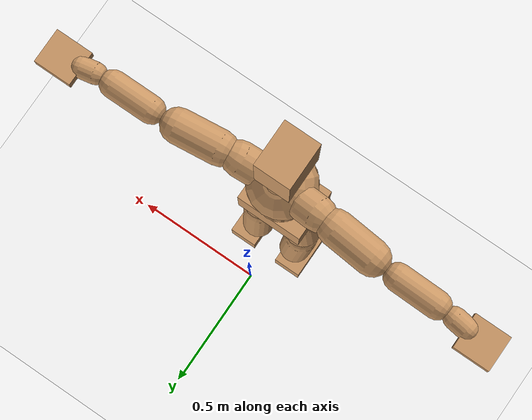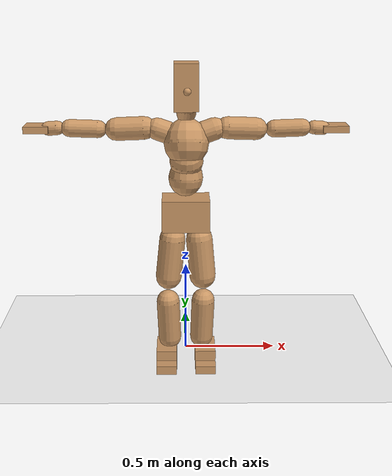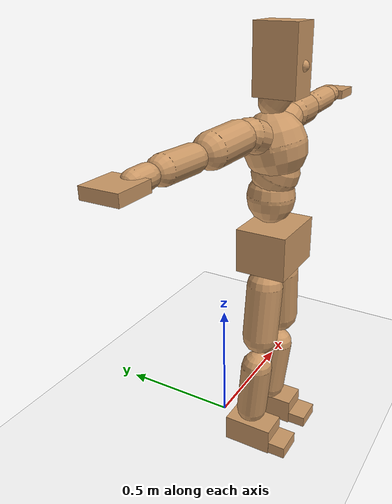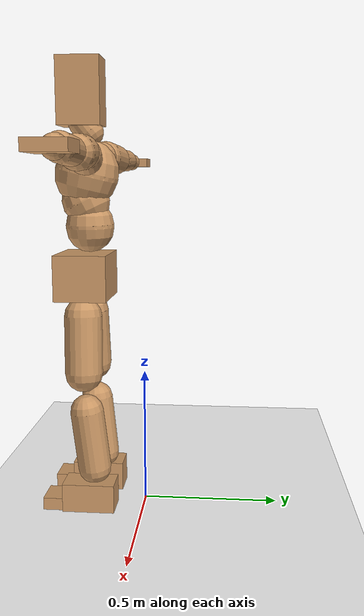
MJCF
<mujoco model="humanoid">
  <option integrator="implicitfast" />

  <visual>
    <global offwidth="1280" offheight="960" />
    <headlight active="1" ambient="0.34 0.34 0.34" diffuse="0.5 0.5 0.5" />
  </visual>

  <default>
    <joint damping="2" stiffness="2" armature="0.01" limited="true" solimplimit="0 .99 .01" />
    <geom condim="1" friction="0.7 0.005 0.0001" solimp=".99 .99 .003" solref="0.015 1" margin="0.001" rgba="0.8 0.6 .4 1" />
    <default class="smplcontact">
      <geom condim="3" friction="1. 0.005 0.0001" solref="0.015 1" solimp="0.98 0.98 0.001" priority="1" />
    </default>
    <default class="stiff_medium">
      <joint stiffness="10" />
    </default>
    <default class="stiff_medium_higher">
      <joint stiffness="50" />
    </default>
    <default class="stiff_high">
      <joint stiffness="100" />
    </default>
  </default>

  <asset>
    <texture type="skybox" builtin="gradient" rgb1="0.99 0.99 0.99" rgb2="0.608 0.828 0.892" width="100" />
    <texture builtin="flat" height="1278" mark="cross" markrgb="1 1 1" name="texgeom" random="0.01" rgb1="0.8 0.6 0.4" rgb2="0.8 0.6 0.4" type="cube" width="127" />
    <texture name="texplane" type="2d" builtin="checker" markrgb="1 1 1" rgb1="0.756 0.772 0.76" rgb2="0.6 0.6 0.6" width="100" height="100" />
    <material name="MatPlane" reflectance="0.5" texture="texplane" texrepeat="1 1" texuniform="true" />
    <material name="geom" texture="texgeom" texuniform="true" />
  </asset>

  <worldbody>
    <light name="tracking_light" pos="0 0 7" dir="0 0 -1" directional="true" cutoff="100" exponent="1" diffuse="1 1 1" specular="0.1 0.1 0.1" mode="trackcom" />
    <camera name="back" pos="0 3 2.4" xyaxes="-1 0 0 0 -1 2" mode="trackcom" />
    <camera name="side" pos="-3 0 2.4" xyaxes="0 -1 0 1 0 2" mode="trackcom" />
    <camera name="front_side" pos="-2.8 -2.8 0.8" xyaxes="0.5 -0.5 0 0.1 0.1 1" mode="trackcom" />
    <geom condim="3" name="floor" pos="0 0 0" rgba="1 1 1 1" size="100 100 .2" type="plane" material="MatPlane" />
    <body name="Pelvis" pos="-0.0018 -0.2233 0.876008" euler="90 0 0">
      <site name="Pelvis" size="0.01" />
      <freejoint name="Pelvis" />
      <geom type="box" pos="-0.0000 -0.0121 -0.0055" size="0.122935 0.08303 0.09545" quat="1.0000 0.0000 0.0000 0.0000" density="3165.830099" name="Pelvis" />
      <body name="L_Hip" pos="0.0642875 -0.084545 -0.00629">
        <joint name="L_Hip_x" type="hinge" pos="0 0 0" axis="1 0 0" stiffness="11.615594318181817" range="-160.0 22.92" class="stiff_medium" damping="16.992005719801227" armature="0.011047533761662804"/>
        <joint name="L_Hip_y" type="hinge" pos="0 0 0" axis="0 1 0" stiffness="11.657666136363636" range="-70.0 70.0" class="stiff_medium" damping="12.769709742510313" armature="0.013987832984795676"/>
        <joint name="L_Hip_z" type="hinge" pos="0 0 0" axis="0 0 1" stiffness="11.648951363636364" range="-28.65 90.0" class="stiff_medium" damping="11.341956910592778" armature="0.011043052936362053"/>
        <geom type="capsule" density="2040.816327" fromto="0.0063825 -0.069375 -0.0008325 0.025345 -0.277685 -0.00333" size="0.0691875" name="L_Hip" />
        <body name="L_Knee" pos="0.0317275 -0.34706 -0.0041625">
          <joint name="L_Knee_x" type="hinge" pos="0 0 0" axis="1 0 0" range="-5.16 171.89" damping="9.355423091618" armature="0.011488266022836445" stiffness="2.3807972045454546"/>
          <joint name="L_Knee_y" type="hinge" pos="0 0 0" axis="0 1 0" range="-4.58 6.88" damping="10.443131447323267" armature="0.014533092011066952" stiffness="2.3450574545454543"/>
          <joint name="L_Knee_z" type="hinge" pos="0 0 0" axis="0 0 1" range="-6.88 4.58" damping="9.36510623409631" armature="0.011465499468772676" stiffness="2.3904653863636365"/>
          <geom type="capsule" density="1234.567901" fromto="-0.0024975 -0.07363 -0.0080475 -0.0100825 -0.29452 -0.032375" size="0.0608625" name="L_Knee" />
          <body name="L_Ankle" pos="-0.01258 -0.36815 -0.0404225">
            <joint name="L_Ankle_x" type="hinge" pos="0 0 0" axis="1 0 0" range="-45.84 45.84" class="stiff_medium" damping="8.19975593533048" armature="0.01418074966511696" stiffness="13.170436250000002"/>
            <joint name="L_Ankle_y" type="hinge" pos="0 0 0" axis="0 1 0" range="-74.48 22.92" class="stiff_medium" damping="4.120473631475571" armature="0.01432359274807872" stiffness="13.170425454545454"/>
            <joint name="L_Ankle_z" type="hinge" pos="0 0 0" axis="0 0 1" range="-4.58 4.58" class="stiff_medium" damping="8.505685989660677" armature="0.015258677544483321" stiffness="13.17041"/>
            <geom type="box" pos="0.0215525 -0.0221075 0.022385" size="0.0543375 0.0522 0.095625" quat="1.0000 0.0000 0.0000 0.0000" density="449.071558" name="L_Ankle" class="smplcontact" />
            <body name="L_Toe" pos="0.02442 -0.051615 0.110353">
              <joint name="L_Toe_x" type="hinge" pos="0 0 0" axis="1 0 0" range="-91.67 22.92" armature="0.015800903518619687" damping="2.8851646588065916" stiffness="2.6340820000000003"/>
              <joint name="L_Toe_y" type="hinge" pos="0 0 0" axis="0 1 0" range="-4.58 4.58" armature="0.016456563304650357" damping="2.9444163150831786" stiffness="2.6340820000000003"/>
              <joint name="L_Toe_z" type="hinge" pos="0 0 0" axis="0 0 1" range="-4.58 4.58" armature="0.01778227210127668" damping="3.060717656402664" stiffness="2.6340820000000003"/>
              <geom type="box" pos="-0.002775 0.0050875 0.02294" size="0.053775 0.0225 0.0558" quat="1.0000 0.0000 0.0000 0.0000" density="423.206892" name="L_Toe" class="smplcontact" />
            </body>
          </body>
        </body>
      </body>
      <body name="R_Hip" pos="-0.0626225 -0.0837125 -0.0039775">
        <joint name="R_Hip_x" type="hinge" pos="0 0 0" axis="1 0 0" stiffness="11.615594318181817" range="-160.0 22.92" class="stiff_medium" damping="16.992005719801227" armature="0.011047533761662804"/>
        <joint name="R_Hip_y" type="hinge" pos="0 0 0" axis="0 1 0" stiffness="11.657666136363636" range="-70.0 70.0" class="stiff_medium" damping="12.769709742510313" armature="0.013987832984795676"/>
        <joint name="R_Hip_z" type="hinge" pos="0 0 0" axis="0 0 1" stiffness="11.648951363636364" range="-90.0 28.65" class="stiff_medium" damping="11.341956910592778" armature="0.011043052936362053"/>
        <geom type="capsule" density="2040.816327" fromto="-0.0071225 -0.0707625 -0.001665 -0.028305 -0.283143 -0.0065675" size="0.068175" name="R_Hip" />
        <body name="R_Knee" pos="-0.0354275 -0.353905 -0.0082325">
          <joint name="R_Knee_x" type="hinge" pos="0 0 0" axis="1 0 0" range="-5.16 171.89" damping="9.355423091618" armature="0.011488266022836445" stiffness="2.3807972045454546"/>
          <joint name="R_Knee_y" type="hinge" pos="0 0 0" axis="0 1 0" range="-6.88 4.58" damping="10.443131447323267" armature="0.014533092011066952" stiffness="2.3450574545454543"/>
          <joint name="R_Knee_z" type="hinge" pos="0 0 0" axis="0 0 1" range="-4.58 6.88" damping="9.36510623409631" armature="0.011465499468772676" stiffness="2.3904653863636365"/>
          <geom type="capsule" density="1234.567901" fromto="0.00296 -0.0737225 -0.0078625 0.011655 -0.294797 -0.031265" size="0.0608625" name="R_Knee" />
          <body name="R_Ankle" pos="0.014615 -0.36852 -0.0391275">
            <joint name="R_Ankle_x" type="hinge" pos="0 0 0" axis="1 0 0" range="-45.84 45.84" class="stiff_medium" damping="8.19975593533048" armature="0.01418074966511696" stiffness="13.170436250000002"/>
            <joint name="R_Ankle_y" type="hinge" pos="0 0 0" axis="0 1 0" range="-22.92 74.48" class="stiff_medium" damping="4.120473631475571" armature="0.01432359274807872" stiffness="13.170425454545454"/>
            <joint name="R_Ankle_z" type="hinge" pos="0 0 0" axis="0 0 1" range="-4.58 4.58" class="stiff_medium" damping="8.505685989660677" armature="0.015258677544483321" stiffness="13.17041"/>
            <geom type="box" pos="-0.01961 -0.016095 0.02368" size="0.0543375 0.053775 0.0973125" quat="1.0000 0.0000 0.0000 0.0000" density="434.700981" name="R_Ankle" class="smplcontact" />
            <body name="R_Toe" pos="-0.023495 -0.0444925 0.114053">
              <joint name="R_Toe_x" type="hinge" pos="0 0 0" axis="1 0 0" range="-91.67 22.92" armature="0.015800903518619687" damping="2.8851646588065916" stiffness="2.6340820000000003"/>
              <joint name="R_Toe_y" type="hinge" pos="0 0 0" axis="0 1 0" range="-4.58 4.58" armature="0.016456563304650357" damping="2.9444163150831786" stiffness="2.6340820000000003"/>
              <joint name="R_Toe_z" type="hinge" pos="0 0 0" axis="0 0 1" range="-4.58 4.58" armature="0.01778227210127668" damping="3.060717656402664" stiffness="2.6340820000000003"/>
              <geom type="box" pos="0.003885 0.0041625 0.0209975" size="0.0538875 0.0243 0.0554625" quat="1.0000 0.0000 0.0000 0.0000" density="407.384095" name="R_Toe" class="smplcontact" />
            </body>
          </body>
        </body>
      </body>
      <body name="Torso" pos="-0.0024 0.10464 -0.025632">
        <joint name="Torso_x" type="hinge" pos="0 0 0" axis="1 0 0" range="-25.78 57.3" class="stiff_medium" damping="18.196011550101037" armature="0.011746362893571758" stiffness="12.527559545454546"/>
        <joint name="Torso_y" type="hinge" pos="0 0 0" axis="0 1 0" range="-57.3 57.3" class="stiff_high" damping="24.203706786049068" armature="0.011708942407888783" stiffness="125.07949090909092"/>
        <joint name="Torso_z" type="hinge" pos="0 0 0" axis="0 0 1" range="-34.38 34.38" class="stiff_high" damping="24.368800513527663" armature="0.011631632329502093" stiffness="127.63437272727272"/>
        <geom type="capsule" density="2040.816327" fromto="0.0024 0.058368 0.00048 0.00288 0.071328 0.000576" size="0.088435" name="Torso" />
        <body name="Spine" pos="0.00528 0.129792 0.001056">
          <joint name="Spine_x" type="hinge" pos="0 0 0" axis="1 0 0" stiffness="12.273275681818184" range="-25.78 57.3" class="stiff_medium" damping="17.77674392424834" armature="0.011443567226544498"/>
          <joint name="Spine_y" type="hinge" pos="0 0 0" axis="0 1 0" stiffness="12.333935" range="-57.3 57.3" class="stiff_high" damping="9.592960346568319" armature="0.011657989751804694"/>
          <joint name="Spine_z" type="hinge" pos="0 0 0" axis="0 0 1" stiffness="24.41806954545455" range="-34.38 34.38" class="stiff_high" damping="14.16652226910456" armature="0.011415177647407095"/>
          <geom type="capsule" density="2040.816327" fromto="0.000672 0.022848 0.010944 0.000768 0.027936 0.01344" size="0.086825" name="Spine" />
          <body name="Chest" pos="0.00144 0.050784 0.024384">
            <joint name="Chest_x" type="hinge" pos="0 0 0" axis="1 0 0" stiffness="11.88884977272727" range="-25.78 57.3" class="stiff_medium" damping="17.396770080525854" armature="0.011313966541768337"/>
            <joint name="Chest_y" type="hinge" pos="0 0 0" axis="0 1 0" stiffness="12.029503488372093" range="-57.3 57.3" class="stiff_high" damping="9.456580155332752" armature="0.011615570355921518"/>
            <joint name="Chest_z" type="hinge" pos="0 0 0" axis="0 0 1" stiffness="23.908487727272725" range="-34.38 34.38" class="stiff_high" damping="13.98257330475694" armature="0.011357679427324019"/>
            <geom type="capsule" density="2040.816327" fromto="-0.000864 0.065472 -0.016608 -0.00096 0.079968 -0.020352" size="0.11523" name="Chest" />
            <body name="Neck" pos="-0.002688 0.205344 -0.041184">
              <joint name="Neck_x" type="hinge" pos="0 0 0" axis="1 0 0" range="-28.65 57.3" class="stiff_medium_higher" damping="10.952943423838132" armature="0.01093794967384778" stiffness="54.83978863636364"/>
              <joint name="Neck_y" type="hinge" pos="0 0 0" axis="0 1 0" range="-40.11 40.11" class="stiff_medium_higher" damping="11.153769836607205" armature="0.011378182364996433" stiffness="54.66891704545455"/>
              <joint name="Neck_z" type="hinge" pos="0 0 0" axis="0 0 1" range="-40.11 40.11" class="stiff_medium_higher" damping="10.893159204138636" armature="0.010926765174696642" stiffness="54.29828295454545"/>
              <geom type="capsule" density="1000" fromto="0.00096 0.01248 0.009888 0.003936 0.04992 0.039456" size="0.05014" name="Neck" />
              <body name="Head" pos="0.0052 0.065 0.0513">
                <joint name="Head_x" type="hinge" pos="0 0 0" axis="1 0 0" range="-28.65 57.3" class="stiff_medium_higher" damping="2.1781256830256708" armature="0.011013722584402794" stiffness="53.84455000000001"/>
                <joint name="Head_y" type="hinge" pos="0 0 0" axis="0 1 0" range="-40.11 40.11" class="stiff_medium_higher" damping="2.2051729405462255" armature="0.011288950547727869" stiffness="53.84455000000001"/>
                <joint name="Head_z" type="hinge" pos="0 0 0" axis="0 0 1" range="-40.11 40.11" class="stiff_medium_higher" damping="2.1767777263016717" armature="0.011000094878968891" stiffness="53.84455000000001"/>
                <geom type="box" pos="-0.0042 0.0876 -0.0116" size="0.062115 0.118285 0.0779" quat="1.0000 0.0000 0.0000 0.0000" density="1018.069894" name="Head" />
                <geom type="capsule" name="nose" size="0.0205 0.01025" pos="0 0.07 0.05" quat="1 0 0 0" mass="0" contype="0" conaffinity="0" />
              </body>
            </body>
            <body name="L_Thorax" pos="0.074072 0.114398 -0.032054">
              <joint name="L_Thorax_x" type="hinge" pos="0 0 0" axis="1 0 0" range="-10.89 4.58" class="stiff_medium_higher" damping="25.542373824688298" armature="0.013543930085154133" stiffness="60.212661363636364"/>
              <joint name="L_Thorax_y" type="hinge" pos="0 0 0" axis="0 1 0" range="-28.65 17.19" class="stiff_medium_higher" damping="23.444888604465987" armature="0.011464480904814637" stiffness="59.93106079545455"/>
              <joint name="L_Thorax_z" type="hinge" pos="0 0 0" axis="0 0 1" range="-31.51 40.11" class="stiff_medium_higher" damping="23.44397655073607" armature="0.011462598717954029" stiffness="59.93623806818182"/>
              <geom type="capsule" density="1000" fromto="0.017108 0.005734 -0.001692 0.068432 0.022936 -0.006674" size="0.0586125" name="L_Thorax" />
              <body name="L_Shoulder" pos="0.08554 0.02867 -0.008366">
                <joint name="L_Shoulder_x" type="hinge" pos="0 0 0" axis="1 0 0" range="-97.4 97.4" class="stiff_medium" damping="7.891273550453283" armature="0.014336507078470222" stiffness="12.065583863636364"/>
                <joint name="L_Shoulder_y" type="hinge" pos="0 0 0" axis="0 1 0" range="-108.86 80.21" class="stiff_medium" damping="7.06543847784517" armature="0.011529437922979816" stiffness="12.027285000000001"/>
                <joint name="L_Shoulder_z" type="hinge" pos="0 0 0" axis="0 0 1" range="-97.4 85.94" class="stiff_medium" damping="7.0595849483947095" armature="0.011526910885383178" stiffness="12.009997045454547"/>
                <geom type="capsule" density="1000" fromto="0.048786 -0.002444 -0.00517 0.195238 -0.009588 -0.02068" size="0.0581625" name="L_Shoulder" />
                <body name="L_Elbow" pos="0.244024 -0.012032 -0.02585">
                  <joint name="L_Elbow_x" type="hinge" pos="0 0 0" axis="1 0 0" range="-17.19 4.58" damping="6.92048440236336" armature="0.015648413900493766" stiffness="2.448457954545455"/>
                  <joint name="L_Elbow_y" type="hinge" pos="0 0 0" axis="0 1 0" range="-180.0 17.19" damping="6.0215971860437145" armature="0.011847942921695805" stiffness="2.4483327045454546"/>
                  <joint name="L_Elbow_z" type="hinge" pos="0 0 0" axis="0 0 1" range="-100.84 4.58" damping="6.0190563525125125" armature="0.011834677084840109" stiffness="2.449009068181818"/>
                  <geom type="capsule" density="1000" fromto="0.046812 0.001692 -0.000188 0.187436 0.006768 -0.000846" size="0.0455625" name="L_Elbow" />
                  <body name="L_Wrist" pos="0.234248 0.00846 -0.001128">
                    <joint name="L_Wrist_x" type="hinge" pos="0 0 0" axis="1 0 0" range="-180.0 22.92" armature="0.016133652063845882" damping="2.895767269694115" stiffness="2.59875075"/>
                    <joint name="L_Wrist_y" type="hinge" pos="0 0 0" axis="0 1 0" range="-17.19 17.19" armature="0.01301350899986824" damping="2.5937444750884713" stiffness="2.584817977272727"/>
                    <joint name="L_Wrist_z" type="hinge" pos="0 0 0" axis="0 0 1" range="-22.92 22.92" armature="0.012836938175715745" damping="2.578602482348474" stiffness="2.5898663181818184"/>
                    <geom type="capsule" density="1000" fromto="0.015792 -0.001504 -0.00282 0.063168 -0.00611 -0.01128" size="0.035775" name="L_Wrist" class="smplcontact" />
                    <body name="L_Hand" pos="0.07896 -0.007708 -0.014006">
                      <joint name="L_Hand_x" type="hinge" pos="0 0 0" axis="1 0 0" range="-17.19 17.19" armature="0.01778335183119599" damping="3.0855276711881254" stiffness="2.6767959999999995"/>
                      <joint name="L_Hand_y" type="hinge" pos="0 0 0" axis="0 1 0" range="-51.57 51.57" armature="0.015154464713021946" damping="2.8483472585328595" stiffness="2.6767959999999995"/>
                      <joint name="L_Hand_z" type="hinge" pos="0 0 0" axis="0 0 1" range="-91.67 91.67" armature="0.01445369893297368" damping="2.7817118286762996" stiffness="2.6767959999999995"/>
                      <geom type="box" pos="0.046342 0.00094 -0.005452" size="0.0658125 0.017775 0.060525" quat="1.0000 0.0000 0.0000 0.0000" density="400.552564" name="L_Hand" class="smplcontact" />
                    </body>
                  </body>
                </body>
              </body>
            </body>
            <body name="R_Thorax" pos="-0.076892 0.111672 -0.036284">
              <joint name="R_Thorax_x" type="hinge" pos="0 0 0" axis="1 0 0" range="-10.89 4.58" class="stiff_medium_higher" damping="25.542373824688298" armature="0.013543930085154133" stiffness="60.212661363636364"/>
              <joint name="R_Thorax_y" type="hinge" pos="0 0 0" axis="0 1 0" range="-17.19 28.65" class="stiff_medium_higher" damping="23.444888604465987" armature="0.011464480904814637" stiffness="59.93106079545455"/>
              <joint name="R_Thorax_z" type="hinge" pos="0 0 0" axis="0 0 1" range="-40.11 31.51" class="stiff_medium_higher" damping="23.44397655073607" armature="0.011462598717954029" stiffness="59.93623806818182"/>
              <geom type="capsule" density="1000" fromto="-0.018048 0.00611 -0.001692 -0.072192 0.02444 -0.006862" size="0.0574875" name="R_Thorax" />
              <body name="R_Shoulder" pos="-0.09024 0.030644 -0.008554">
                <joint name="R_Shoulder_x" type="hinge" pos="0 0 0" axis="1 0 0" range="-97.4 97.4" class="stiff_medium" damping="7.891273550453283" armature="0.014336507078470222" stiffness="12.065583863636364"/>
                <joint name="R_Shoulder_y" type="hinge" pos="0 0 0" axis="0 1 0" range="-80.21 108.86" class="stiff_medium" damping="7.06543847784517" armature="0.011529437922979816" stiffness="12.027285000000001"/>
                <joint name="R_Shoulder_z" type="hinge" pos="0 0 0" axis="0 0 1" range="-85.94 97.4" class="stiff_medium" damping="7.0595849483947095" armature="0.011526910885383178" stiffness="12.009997045454547"/>
                <geom type="capsule" density="1000" fromto="-0.047658 -0.002538 -0.004042 -0.19082 -0.010058 -0.016074" size="0.0597375" name="R_Shoulder" />
                <body name="R_Elbow" pos="-0.238478 -0.012502 -0.020116">
                  <joint name="R_Elbow_x" type="hinge" pos="0 0 0" axis="1 0 0" range="-17.19 4.58" damping="6.92048440236336" armature="0.015648413900493766" stiffness="2.448457954545455"/>
                  <joint name="R_Elbow_y" type="hinge" pos="0 0 0" axis="0 1 0" range="-17.19 180.0" damping="6.0215971860437145" armature="0.011847942921695805" stiffness="2.4483327045454546"/>
                  <joint name="R_Elbow_z" type="hinge" pos="0 0 0" axis="0 0 1" range="-4.58 100.84" damping="6.0190563525125125" armature="0.011834677084840109" stiffness="2.449009068181818"/>
                  <geom type="capsule" density="1000" fromto="-0.048034 0.001504 -0.001034 -0.191948 0.005828 -0.004136" size="0.0459" name="R_Elbow" />
                  <body name="R_Wrist" pos="-0.239982 0.007332 -0.005264">
                    <joint name="R_Wrist_x" type="hinge" pos="0 0 0" axis="1 0 0" range="-180.0 22.92" armature="0.016133652063845882" damping="2.895767269694115" stiffness="2.59875075"/>
                    <joint name="R_Wrist_y" type="hinge" pos="0 0 0" axis="0 1 0" range="-17.19 17.19" armature="0.01301350899986824" damping="2.5937444750884713" stiffness="2.584817977272727"/>
                    <joint name="R_Wrist_z" type="hinge" pos="0 0 0" axis="0 0 1" range="-22.92 22.92" armature="0.012836938175715745" damping="2.578602482348474" stiffness="2.5898663181818184"/>
                    <geom type="capsule" density="1000" fromto="-0.015886 -0.001128 -0.001974 -0.063638 -0.004606 -0.007802" size="0.036675" name="R_Wrist" class="smplcontact" />
                    <body name="R_Hand" pos="-0.079524 -0.005734 -0.009682">
                      <joint name="R_Hand_x" type="hinge" pos="0 0 0" axis="1 0 0" range="-17.19 17.19" armature="0.01778335183119599" damping="3.0855276711881254" stiffness="2.6767959999999995"/>
                      <joint name="R_Hand_y" type="hinge" pos="0 0 0" axis="0 1 0" range="-51.57 51.57" armature="0.015154464713021946" damping="2.8483472585328595" stiffness="2.6767959999999995"/>
                      <joint name="R_Hand_z" type="hinge" pos="0 0 0" axis="0 0 1" range="-91.67 91.67" armature="0.01445369893297368" damping="2.7817118286762996" stiffness="2.6767959999999995"/>
                      <geom type="box" pos="-0.043428 -0.000846 -0.007426" size="0.0640125 0.01845 0.061425" quat="1.0000 0.0000 0.0000 0.0000" density="403.679611" name="R_Hand" class="smplcontact" />
                    </body>
                  </body>
                </body>
              </body>
            </body>
          </body>
        </body>
      </body>
    </body>
  </worldbody>
  <actuator>
    <general name="L_Hip_x" joint="L_Hip_x" biastype="affine" gainprm="333.7509459971676" biasprm="-250.11250643610177 -209.0806977272727 -2.2656007626401635" ctrllimited="true" ctrlrange="-1 1" forcerange="-418.1613954545454 418.1613954545454" />
    <general name="L_Hip_y" joint="L_Hip_y" biastype="affine" gainprm="256.3654680440175" biasprm="0.0 -209.83799045454543 -2.5539419485020627" ctrllimited="true" ctrlrange="-1 1" forcerange="-419.67598090909087 419.67598090909087" />
    <general name="L_Hip_z" joint="L_Hip_z" biastype="affine" gainprm="217.10731260439215" biasprm="112.25902762983108 -209.68112454545457 -2.2683913821185557" ctrllimited="true" ctrlrange="-1 1" forcerange="-419.36224909090913 419.36224909090913" />
    <general name="L_Knee_x" joint="L_Knee_x" biastype="affine" gainprm="331.0611477688985" biasprm="311.7640506495817 -214.27174840909092 -2.3388557729045" ctrllimited="true" ctrlrange="-1 1" forcerange="-428.54349681818184 428.54349681818184" />
    <general name="L_Knee_y" joint="L_Knee_y" biastype="affine" gainprm="21.107071752692733" biasprm="4.236148781081439 -211.0551709090909 -2.610782861830817" ctrllimited="true" ctrlrange="-1 1" forcerange="-422.1103418181818 422.1103418181818" />
    <general name="L_Knee_z" joint="L_Knee_z" biastype="affine" gainprm="21.515773242359867" biasprm="-4.318174385464895 -215.14188477272728 -2.3412765585240773" ctrllimited="true" ctrlrange="-1 1" forcerange="-430.28376954545456 430.28376954545456" />
    <general name="L_Ankle_x" joint="L_Ankle_x" biastype="affine" gainprm="94.83412609927666" biasprm="0.0 -118.53392625000001 -2.7332519784434934" ctrllimited="true" ctrlrange="-1 1" forcerange="-237.06785250000001 237.06785250000001" />
    <general name="L_Ankle_y" joint="L_Ankle_y" biastype="affine" gainprm="100.75083236120766" biasprm="-53.33380817806845 -118.53382909090908 -2.7469824209837137" ctrllimited="true" ctrlrange="-1 1" forcerange="-237.06765818181816 237.06765818181816" />
    <general name="L_Ankle_z" joint="L_Ankle_z" biastype="affine" gainprm="9.47511849587531" biasprm="0.0 -118.53369 -2.8352286632202253" ctrllimited="true" ctrlrange="-1 1" forcerange="-237.06738 237.06738" />
    <general name="L_Toe_x" joint="L_Toe_x" biastype="affine" gainprm="94.82566187269448" biasprm="-56.892087038552624 -94.826952 -1.1540658635226366" ctrllimited="true" ctrlrange="-1 1" forcerange="-189.653904 189.653904" />
    <general name="L_Toe_y" joint="L_Toe_y" biastype="affine" gainprm="7.580094796700249" biasprm="0.0 -94.826952 -1.1777665260332715" ctrllimited="true" ctrlrange="-1 1" forcerange="-189.653904 189.653904" />
    <general name="L_Toe_z" joint="L_Toe_z" biastype="affine" gainprm="7.580094796700249" biasprm="0.0 -94.826952 -1.2242870625610658" ctrllimited="true" ctrlrange="-1 1" forcerange="-189.653904 189.653904" />
    <general name="R_Hip_x" joint="R_Hip_x" biastype="affine" gainprm="333.7509459971676" biasprm="-250.11250643610177 -209.0806977272727 -2.2656007626401635" ctrllimited="true" ctrlrange="-1 1" forcerange="-418.1613954545454 418.1613954545454" />
    <general name="R_Hip_y" joint="R_Hip_y" biastype="affine" gainprm="256.3654680440175" biasprm="0.0 -209.83799045454543 -2.5539419485020627" ctrllimited="true" ctrlrange="-1 1" forcerange="-419.67598090909087 419.67598090909087" />
    <general name="R_Hip_z" joint="R_Hip_z" biastype="affine" gainprm="217.10731260439215" biasprm="-112.25902762983108 -209.68112454545457 -2.2683913821185557" ctrllimited="true" ctrlrange="-1 1" forcerange="-419.36224909090913 419.36224909090913" />
    <general name="R_Knee_x" joint="R_Knee_x" biastype="affine" gainprm="331.0611477688985" biasprm="311.7640506495817 -214.27174840909092 -2.3388557729045" ctrllimited="true" ctrlrange="-1 1" forcerange="-428.54349681818184 428.54349681818184" />
    <general name="R_Knee_y" joint="R_Knee_y" biastype="affine" gainprm="21.107071752692733" biasprm="-4.236148781081439 -211.0551709090909 -2.610782861830817" ctrllimited="true" ctrlrange="-1 1" forcerange="-422.1103418181818 422.1103418181818" />
    <general name="R_Knee_z" joint="R_Knee_z" biastype="affine" gainprm="21.515773242359867" biasprm="4.318174385464895 -215.14188477272728 -2.3412765585240773" ctrllimited="true" ctrlrange="-1 1" forcerange="-430.28376954545456 430.28376954545456" />
    <general name="R_Ankle_x" joint="R_Ankle_x" biastype="affine" gainprm="94.83412609927666" biasprm="0.0 -118.53392625000001 -2.7332519784434934" ctrllimited="true" ctrlrange="-1 1" forcerange="-237.06785250000001 237.06785250000001" />
    <general name="R_Ankle_y" joint="R_Ankle_y" biastype="affine" gainprm="100.75083236120766" biasprm="53.33380817806845 -118.53382909090908 -2.7469824209837137" ctrllimited="true" ctrlrange="-1 1" forcerange="-237.06765818181816 237.06765818181816" />
    <general name="R_Ankle_z" joint="R_Ankle_z" biastype="affine" gainprm="9.47511849587531" biasprm="0.0 -118.53369 -2.8352286632202253" ctrllimited="true" ctrlrange="-1 1" forcerange="-237.06738 237.06738" />
    <general name="R_Toe_x" joint="R_Toe_x" biastype="affine" gainprm="94.82566187269448" biasprm="-56.892087038552624 -94.826952 -1.1540658635226366" ctrllimited="true" ctrlrange="-1 1" forcerange="-189.653904 189.653904" />
    <general name="R_Toe_y" joint="R_Toe_y" biastype="affine" gainprm="7.580094796700249" biasprm="0.0 -94.826952 -1.1777665260332715" ctrllimited="true" ctrlrange="-1 1" forcerange="-189.653904 189.653904" />
    <general name="R_Toe_z" joint="R_Toe_z" biastype="affine" gainprm="7.580094796700249" biasprm="0.0 -94.826952 -1.2242870625610658" ctrllimited="true" ctrlrange="-1 1" forcerange="-189.653904 189.653904" />
    <general name="Torso_x" joint="Torso_x" biastype="affine" gainprm="217.98247393745027" biasprm="82.70110229307211 -300.6614290909091 -4.85226974669361" ctrllimited="true" ctrlrange="-1 1" forcerange="-450.9921436363636 450.9921436363636" />
    <general name="Torso_y" joint="Torso_y" biastype="affine" gainprm="300.21289065263" biasprm="0.0 -300.1907781818182 -4.840741357209813" ctrllimited="true" ctrlrange="-1 1" forcerange="-450.2861672727273 450.2861672727273" />
    <general name="Torso_z" joint="Torso_z" biastype="affine" gainprm="183.8070352122202" biasprm="0.0 -306.3224945454545 -4.873760102705533" ctrllimited="true" ctrlrange="-1 1" forcerange="-459.4837418181818 459.4837418181818" />
    <general name="Spine_x" joint="Spine_x" biastype="affine" gainprm="213.5578750778951" biasprm="81.02243888366938 -294.5586163636364 -4.740465046466224" ctrllimited="true" ctrlrange="-1 1" forcerange="-441.8379245454546 441.8379245454546" />
    <general name="Spine_y" joint="Spine_y" biastype="affine" gainprm="296.0362448359248" biasprm="0.0 -296.01444000000004 -4.796480173284159" ctrllimited="true" ctrlrange="-1 1" forcerange="-444.02166 444.02166" />
    <general name="Spine_z" joint="Spine_z" biastype="affine" gainprm="175.823051144152" biasprm="0.0 -293.01683454545457 -4.72217408970152" ctrllimited="true" ctrlrange="-1 1" forcerange="-439.52525181818186 439.52525181818186" />
    <general name="Chest_x" joint="Chest_x" biastype="affine" gainprm="206.86877410773084" biasprm="78.48463841930277 -285.33239454545446 -4.6391386881402275" ctrllimited="true" ctrlrange="-1 1" forcerange="-427.99859181818175 427.99859181818175" />
    <general name="Chest_y" joint="Chest_y" biastype="affine" gainprm="288.7293503604755" biasprm="0.0 -288.70808372093023 -4.728290077666376" ctrllimited="true" ctrlrange="-1 1" forcerange="-433.0621255813953 433.0621255813953" />
    <general name="Chest_z" joint="Chest_z" biastype="affine" gainprm="172.15379179039647" biasprm="0.0 -286.9018527272727 -4.660857768252313" ctrllimited="true" ctrlrange="-1 1" forcerange="-430.35277909090905 430.35277909090905" />
    <general name="Neck_x" joint="Neck_x" biastype="affine" gainprm="29.615667234249287" biasprm="9.871889078083095 -39.48464781818182 -0.8762354739070507" ctrllimited="true" ctrlrange="-1 1" forcerange="-78.96929563636364 78.96929563636364" />
    <general name="Neck_y" joint="Neck_y" biastype="affine" gainprm="27.555163793148242" biasprm="0.0 -39.36162027272727 -0.8923015869285765" ctrllimited="true" ctrlrange="-1 1" forcerange="-78.72324054545454 78.72324054545454" />
    <general name="Neck_z" joint="Neck_z" biastype="affine" gainprm="27.3683504514127" biasprm="0.0 -39.09476372727273 -0.8714527363310909" ctrllimited="true" ctrlrange="-1 1" forcerange="-78.18952745454546 78.18952745454546" />
    <general name="Head_x" joint="Head_x" biastype="affine" gainprm="19.38546585523622" biasprm="6.4618219517454065 -25.845384000000006 -0.8712502732102684" ctrllimited="true" ctrlrange="-1 1" forcerange="-51.69076800000001 51.69076800000001" />
    <general name="Head_y" joint="Head_y" biastype="affine" gainprm="18.093101464887138" biasprm="0.0 -25.845384000000006 -0.8820691762184902" ctrllimited="true" ctrlrange="-1 1" forcerange="-51.69076800000001 51.69076800000001" />
    <general name="Head_z" joint="Head_z" biastype="affine" gainprm="18.093101464887138" biasprm="0.0 -25.845384000000006 -0.8707110905206688" ctrllimited="true" ctrlrange="-1 1" forcerange="-51.69076800000001 51.69076800000001" />
    <general name="L_Thorax_x" joint="L_Thorax_x" biastype="affine" gainprm="19.509078243700678" biasprm="-7.957484403215988 -144.5103872727273 -2.0433899059750638" ctrllimited="true" ctrlrange="-1 1" forcerange="-289.0207745454546 289.0207745454546" />
    <general name="L_Thorax_y" joint="L_Thorax_y" biastype="affine" gainprm="57.5380563848273" biasprm="-14.384514096206825 -143.8345459090909 -1.8755910883572788" ctrllimited="true" ctrlrange="-1 1" forcerange="-287.6690918181818 287.6690918181818" />
    <general name="L_Thorax_z" joint="L_Thorax_z" biastype="affine" gainprm="89.90470307425797" biasprm="10.795594058065044 -143.84697136363638 -1.8755181240588858" ctrllimited="true" ctrlrange="-1 1" forcerange="-287.69394272727277 287.69394272727277" />
    <general name="L_Shoulder_x" joint="L_Shoulder_x" biastype="affine" gainprm="98.4523086319" biasprm="0.0 -57.91480254545455 -2.104339613454209" ctrllimited="true" ctrlrange="-1 1" forcerange="-115.8296050909091 115.8296050909091" />
    <general name="L_Shoulder_y" joint="L_Shoulder_y" biastype="affine" gainprm="95.25303794206813" biasprm="-14.433805135876934 -57.730968000000004 -1.8841169274253788" ctrllimited="true" ctrlrange="-1 1" forcerange="-115.46193600000001 115.46193600000001" />
    <general name="L_Shoulder_z" joint="L_Shoulder_z" biastype="affine" gainprm="92.23351012697366" biasprm="-5.7652232249106605 -57.64798581818183 -1.8825559862385892" ctrllimited="true" ctrlrange="-1 1" forcerange="-115.29597163636366 115.29597163636366" />
    <general name="L_Elbow_x" joint="L_Elbow_x" biastype="affine" gainprm="16.745609226751345" biasprm="-9.699684536028228 -88.14448636363637 -1.1072775043781375" ctrllimited="true" ctrlrange="-1 1" forcerange="-176.28897272727275 176.28897272727275" />
    <general name="L_Elbow_y" joint="L_Elbow_y" biastype="affine" gainprm="151.67192316815422" biasprm="-125.22798220501645 -88.13997736363636 -0.9634555497669943" ctrllimited="true" ctrlrange="-1 1" forcerange="-176.27995472727272 176.27995472727272" />
    <general name="L_Elbow_z" joint="L_Elbow_z" biastype="affine" gainprm="81.10792255401657" biasprm="-74.06041192420449 -88.16432645454546 -0.9630490164020021" ctrllimited="true" ctrlrange="-1 1" forcerange="-176.32865290909092 176.32865290909092" />
    <general name="L_Wrist_x" joint="L_Wrist_x" biastype="affine" gainprm="27.611379407252485" biasprm="-21.37391818101331 -15.5925045 -1.158306907877646" ctrllimited="true" ctrlrange="-1 1" forcerange="-31.185009 31.185009" />
    <general name="L_Wrist_y" joint="L_Wrist_y" biastype="affine" gainprm="4.653015081416894" biasprm="0.0 -15.508907863636361 -1.0374977900353886" ctrllimited="true" ctrlrange="-1 1" forcerange="-31.017815727272723 31.017815727272723" />
    <general name="L_Wrist_z" joint="L_Wrist_z" biastype="affine" gainprm="6.216137019220451" biasprm="0.0 -15.53919790909091 -1.0314409929393897" ctrllimited="true" ctrlrange="-1 1" forcerange="-31.07839581818182 31.07839581818182" />
    <general name="L_Hand_x" joint="L_Hand_x" biastype="affine" gainprm="4.818587717738645" biasprm="0.0 -16.060775999999997 -1.2342110684752503" ctrllimited="true" ctrlrange="-1 1" forcerange="-32.121551999999994 32.121551999999994" />
    <general name="L_Hand_y" joint="L_Hand_y" biastype="affine" gainprm="14.455763153215933" biasprm="0.0 -16.060775999999997 -1.1393389034131438" ctrllimited="true" ctrlrange="-1 1" forcerange="-32.121551999999994 32.121551999999994" />
    <general name="L_Hand_z" joint="L_Hand_z" biastype="affine" gainprm="25.696331360389852" biasprm="0.0 -16.060775999999997 -1.11268473147052" ctrllimited="true" ctrlrange="-1 1" forcerange="-32.121551999999994 32.121551999999994" />
    <general name="R_Thorax_x" joint="R_Thorax_x" biastype="affine" gainprm="19.509078243700678" biasprm="-7.957484403215988 -144.5103872727273 -2.0433899059750638" ctrllimited="true" ctrlrange="-1 1" forcerange="-289.0207745454546 289.0207745454546" />
    <general name="R_Thorax_y" joint="R_Thorax_y" biastype="affine" gainprm="57.5380563848273" biasprm="14.384514096206818 -143.8345459090909 -1.8755910883572788" ctrllimited="true" ctrlrange="-1 1" forcerange="-287.6690918181818 287.6690918181818" />
    <general name="R_Thorax_z" joint="R_Thorax_z" biastype="affine" gainprm="89.90470307425797" biasprm="-10.795594058065044 -143.84697136363638 -1.8755181240588858" ctrllimited="true" ctrlrange="-1 1" forcerange="-287.69394272727277 287.69394272727277" />
    <general name="R_Shoulder_x" joint="R_Shoulder_x" biastype="affine" gainprm="98.4523086319" biasprm="0.0 -57.91480254545455 -2.104339613454209" ctrllimited="true" ctrlrange="-1 1" forcerange="-115.8296050909091 115.8296050909091" />
    <general name="R_Shoulder_y" joint="R_Shoulder_y" biastype="affine" gainprm="95.25303794206813" biasprm="14.433805135876934 -57.730968000000004 -1.8841169274253788" ctrllimited="true" ctrlrange="-1 1" forcerange="-115.46193600000001 115.46193600000001" />
    <general name="R_Shoulder_z" joint="R_Shoulder_z" biastype="affine" gainprm="92.23351012697366" biasprm="5.765223224910647 -57.64798581818183 -1.8825559862385892" ctrllimited="true" ctrlrange="-1 1" forcerange="-115.29597163636366 115.29597163636366" />
    <general name="R_Elbow_x" joint="R_Elbow_x" biastype="affine" gainprm="16.745609226751345" biasprm="-9.699684536028228 -88.14448636363637 -1.1072775043781375" ctrllimited="true" ctrlrange="-1 1" forcerange="-176.28897272727275 176.28897272727275" />
    <general name="R_Elbow_y" joint="R_Elbow_y" biastype="affine" gainprm="151.67192316815422" biasprm="125.22798220501645 -88.13997736363636 -0.9634555497669943" ctrllimited="true" ctrlrange="-1 1" forcerange="-176.27995472727272 176.27995472727272" />
    <general name="R_Elbow_z" joint="R_Elbow_z" biastype="affine" gainprm="81.10792255401657" biasprm="74.06041192420447 -88.16432645454546 -0.9630490164020021" ctrllimited="true" ctrlrange="-1 1" forcerange="-176.32865290909092 176.32865290909092" />
    <general name="R_Wrist_x" joint="R_Wrist_x" biastype="affine" gainprm="27.611379407252485" biasprm="-21.37391818101331 -15.5925045 -1.158306907877646" ctrllimited="true" ctrlrange="-1 1" forcerange="-31.185009 31.185009" />
    <general name="R_Wrist_y" joint="R_Wrist_y" biastype="affine" gainprm="4.653015081416894" biasprm="0.0 -15.508907863636361 -1.0374977900353886" ctrllimited="true" ctrlrange="-1 1" forcerange="-31.017815727272723 31.017815727272723" />
    <general name="R_Wrist_z" joint="R_Wrist_z" biastype="affine" gainprm="6.216137019220451" biasprm="0.0 -15.53919790909091 -1.0314409929393897" ctrllimited="true" ctrlrange="-1 1" forcerange="-31.07839581818182 31.07839581818182" />
    <general name="R_Hand_x" joint="R_Hand_x" biastype="affine" gainprm="4.818587717738645" biasprm="0.0 -16.060775999999997 -1.2342110684752503" ctrllimited="true" ctrlrange="-1 1" forcerange="-32.121551999999994 32.121551999999994" />
    <general name="R_Hand_y" joint="R_Hand_y" biastype="affine" gainprm="14.455763153215933" biasprm="0.0 -16.060775999999997 -1.1393389034131438" ctrllimited="true" ctrlrange="-1 1" forcerange="-32.121551999999994 32.121551999999994" />
    <general name="R_Hand_z" joint="R_Hand_z" biastype="affine" gainprm="25.696331360389852" biasprm="0.0 -16.060775999999997 -1.11268473147052" ctrllimited="true" ctrlrange="-1 1" forcerange="-32.121551999999994 32.121551999999994" />
  </actuator>
  <contact>
    <exclude body1="Torso" body2="Chest" />
    <exclude body1="Head" body2="Chest" />
    <exclude body1="R_Knee" body2="R_Toe" />
    <exclude body1="R_Knee" body2="L_Ankle" />
    <exclude body1="R_Knee" body2="L_Toe" />
    <exclude body1="L_Knee" body2="L_Toe" />
    <exclude body1="L_Knee" body2="R_Ankle" />
    <exclude body1="L_Knee" body2="R_Toe" />
    <exclude body1="L_Shoulder" body2="Chest" />
    <exclude body1="R_Shoulder" body2="Chest" />
  </contact>
  <sensor>
    <framelinvel name="sensor_Pelvis_framelinvel" objtype="xbody" objname="Pelvis" />
    <framelinvel name="sensor_L_Hip_framelinvel" objtype="xbody" objname="L_Hip" />
    <framelinvel name="sensor_L_Knee_framelinvel" objtype="xbody" objname="L_Knee" />
    <framelinvel name="sensor_L_Ankle_framelinvel" objtype="xbody" objname="L_Ankle" />
    <framelinvel name="sensor_L_Toe_framelinvel" objtype="xbody" objname="L_Toe" />
    <framelinvel name="sensor_R_Hip_framelinvel" objtype="xbody" objname="R_Hip" />
    <framelinvel name="sensor_R_Knee_framelinvel" objtype="xbody" objname="R_Knee" />
    <framelinvel name="sensor_R_Ankle_framelinvel" objtype="xbody" objname="R_Ankle" />
    <framelinvel name="sensor_R_Toe_framelinvel" objtype="xbody" objname="R_Toe" />
    <framelinvel name="sensor_Torso_framelinvel" objtype="xbody" objname="Torso" />
    <framelinvel name="sensor_Spine_framelinvel" objtype="xbody" objname="Spine" />
    <framelinvel name="sensor_Chest_framelinvel" objtype="xbody" objname="Chest" />
    <framelinvel name="sensor_Neck_framelinvel" objtype="xbody" objname="Neck" />
    <framelinvel name="sensor_Head_framelinvel" objtype="xbody" objname="Head" />
    <framelinvel name="sensor_L_Thorax_framelinvel" objtype="xbody" objname="L_Thorax" />
    <framelinvel name="sensor_L_Shoulder_framelinvel" objtype="xbody" objname="L_Shoulder" />
    <framelinvel name="sensor_L_Elbow_framelinvel" objtype="xbody" objname="L_Elbow" />
    <framelinvel name="sensor_L_Wrist_framelinvel" objtype="xbody" objname="L_Wrist" />
    <framelinvel name="sensor_L_Hand_framelinvel" objtype="xbody" objname="L_Hand" />
    <framelinvel name="sensor_R_Thorax_framelinvel" objtype="xbody" objname="R_Thorax" />
    <framelinvel name="sensor_R_Shoulder_framelinvel" objtype="xbody" objname="R_Shoulder" />
    <framelinvel name="sensor_R_Elbow_framelinvel" objtype="xbody" objname="R_Elbow" />
    <framelinvel name="sensor_R_Wrist_framelinvel" objtype="xbody" objname="R_Wrist" />
    <framelinvel name="sensor_R_Hand_framelinvel" objtype="xbody" objname="R_Hand" />
    <frameangvel name="sensor_Pelvis_frameangvel" objtype="xbody" objname="Pelvis" />
    <frameangvel name="sensor_L_Hip_frameangvel" objtype="xbody" objname="L_Hip" />
    <frameangvel name="sensor_L_Knee_frameangvel" objtype="xbody" objname="L_Knee" />
    <frameangvel name="sensor_L_Ankle_frameangvel" objtype="xbody" objname="L_Ankle" />
    <frameangvel name="sensor_L_Toe_frameangvel" objtype="xbody" objname="L_Toe" />
    <frameangvel name="sensor_R_Hip_frameangvel" objtype="xbody" objname="R_Hip" />
    <frameangvel name="sensor_R_Knee_frameangvel" objtype="xbody" objname="R_Knee" />
    <frameangvel name="sensor_R_Ankle_frameangvel" objtype="xbody" objname="R_Ankle" />
    <frameangvel name="sensor_R_Toe_frameangvel" objtype="xbody" objname="R_Toe" />
    <frameangvel name="sensor_Torso_frameangvel" objtype="xbody" objname="Torso" />
    <frameangvel name="sensor_Spine_frameangvel" objtype="xbody" objname="Spine" />
    <frameangvel name="sensor_Chest_frameangvel" objtype="xbody" objname="Chest" />
    <frameangvel name="sensor_Neck_frameangvel" objtype="xbody" objname="Neck" />
    <frameangvel name="sensor_Head_frameangvel" objtype="xbody" objname="Head" />
    <frameangvel name="sensor_L_Thorax_frameangvel" objtype="xbody" objname="L_Thorax" />
    <frameangvel name="sensor_L_Shoulder_frameangvel" objtype="xbody" objname="L_Shoulder" />
    <frameangvel name="sensor_L_Elbow_frameangvel" objtype="xbody" objname="L_Elbow" />
    <frameangvel name="sensor_L_Wrist_frameangvel" objtype="xbody" objname="L_Wrist" />
    <frameangvel name="sensor_L_Hand_frameangvel" objtype="xbody" objname="L_Hand" />
    <frameangvel name="sensor_R_Thorax_frameangvel" objtype="xbody" objname="R_Thorax" />
    <frameangvel name="sensor_R_Shoulder_frameangvel" objtype="xbody" objname="R_Shoulder" />
    <frameangvel name="sensor_R_Elbow_frameangvel" objtype="xbody" objname="R_Elbow" />
    <frameangvel name="sensor_R_Wrist_frameangvel" objtype="xbody" objname="R_Wrist" />
    <frameangvel name="sensor_R_Hand_frameangvel" objtype="xbody" objname="R_Hand" />
    <subtreelinvel name="Chest_subtreelinvel" body="Chest" />
    <gyro name="Pelvis_gyro" site="Pelvis" />
  </sensor>
</mujoco>
